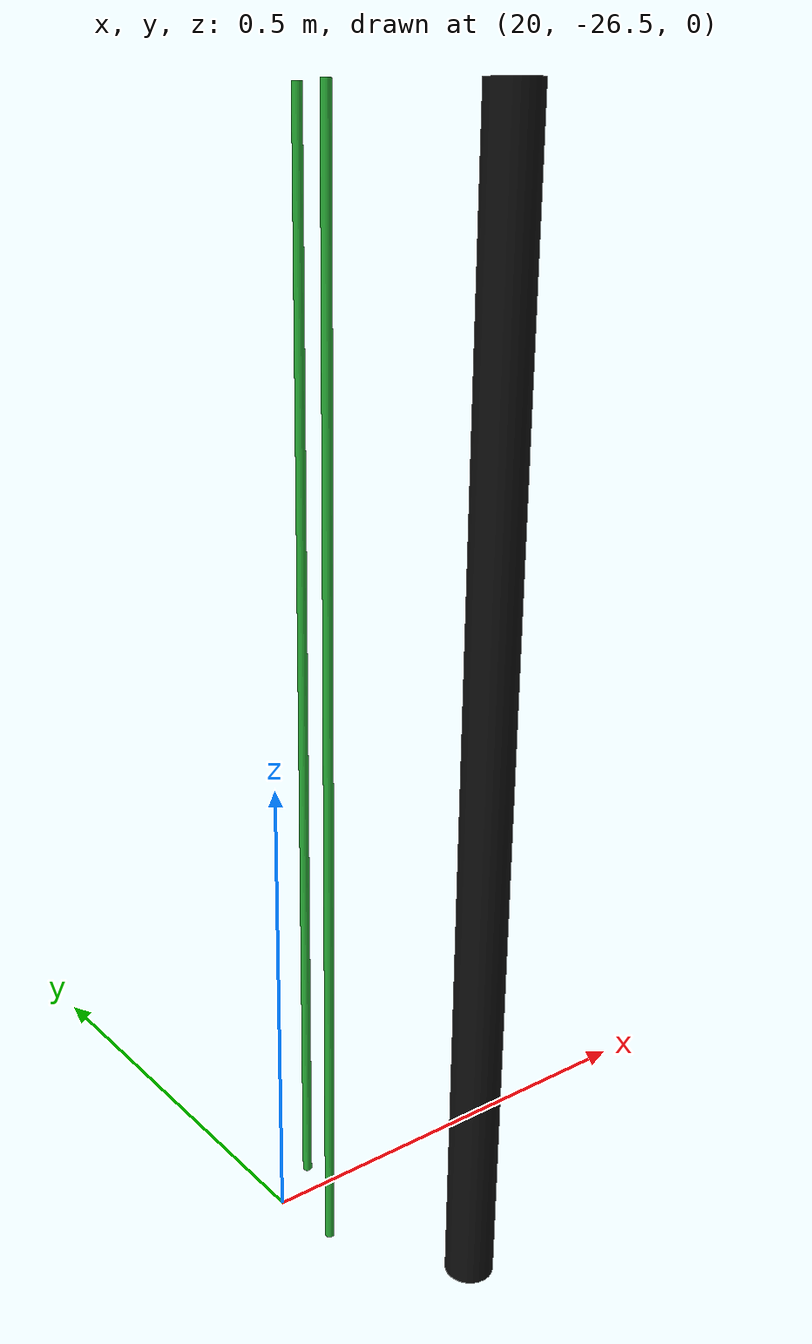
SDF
<sdf version="1.6">
 <world name="default">
  <model name="pole_23">
   <static>1</static>
   <pose>20.1 -26.7 0.575 0 -0 0</pose>
   <link name="link">
    <collision name="collision">
     <geometry><cylinder><length>1.15</length><radius>0.025</radius></cylinder></geometry>
    </collision>
    <visual name="visual">
     <geometry><cylinder><length>1.15</length><radius>0.025</radius></cylinder></geometry>
     <material>
      <script><uri>file://media/materials/scripts/gazebo.material</uri><name>Gazebo/Chrome</name></script>
      <shader type="vertex"><normal_map>__default__</normal_map></shader>
      <emissive>0.1 0.1 0.1 1</emissive>
      <specular>0.01 0.01 0.01 1</specular>
      <ambient>0.5 0.5 0.5 1</ambient>
      <diffuse>0.05 0.05 0.05 1</diffuse>
     </material>
    </visual>
   </link>
  </model>
  <model name="pole_27_clone_clone_49">
   <link name="link">
    <inertial>
     <mass>1</mass>
     <inertia><ixx>1</ixx><ixy>0</ixy><ixz>0</ixz><iyy>1</iyy><iyz>0</iyz><izz>1</izz></inertia>
    </inertial>
    <visual name="visual">
     <geometry><cylinder><length>1.15</length><radius>0.005</radius></cylinder></geometry>
     <material>
      <script><uri>file://media/materials/scripts/gazebo.material</uri><name>Gazebo/Green</name></script>
      <shader type="vertex"><normal_map>__default__</normal_map></shader>
      <emissive>0 0.1 0 1</emissive>
      <specular>0 0.01 0 1</specular>
      <ambient>0 0.5 0 1</ambient>
      <diffuse>0 0.05 0 1</diffuse>
     </material>
    </visual>
    <collision name="collision">
     <geometry><cylinder><radius>0.005</radius><length>1.15</length></cylinder></geometry>
     <surface>
      <friction>
       <ode><mu>1</mu><mu2>1</mu2><fdir1>0 0 0</fdir1><slip1>0</slip1><slip2>0</slip2></ode>
       <torsional>
        <coefficient>1</coefficient>
        <patch_radius>0</patch_radius>
        <surface_radius>0</surface_radius>
        <use_patch_radius>1</use_patch_radius>
        <ode><slip>0</slip></ode>
       </torsional>
      </friction>
      <bounce><restitution_coefficient>0</restitution_coefficient><threshold>1e+06</threshold></bounce>
      <contact>
       <collide_without_contact>0</collide_without_contact>
       <collide_without_contact_bitmask>1</collide_without_contact_bitmask>
       <collide_bitmask>1</collide_bitmask>
       <ode>
        <soft_cfm>0</soft_cfm>
        <soft_erp>0.2</soft_erp>
        <kp>1e+13</kp>
        <kd>1</kd>
        <max_vel>0.01</max_vel>
        <min_depth>0</min_depth>
       </ode>
       <bullet>
        <split_impulse>1</split_impulse>
        <split_impulse_penetration_threshold>-0.01</split_impulse_penetration_threshold>
        <soft_cfm>0</soft_cfm>
        <soft_erp>0.2</soft_erp>
        <kp>1e+13</kp>
        <kd>1</kd>
       </bullet>
      </contact>
     </surface>
    </collision>
   </link>
   <static>1</static>
   <pose>20.2017 -26.5671 0.575 0 -0 0</pose>
  </model>
  <model name="pole_27_clone_clone_50">
   <link name="link">
    <inertial>
     <mass>1</mass>
     <inertia><ixx>1</ixx><ixy>0</ixy><ixz>0</ixz><iyy>1</iyy><iyz>0</iyz><izz>1</izz></inertia>
    </inertial>
    <visual name="visual">
     <geometry><cylinder><length>1.15</length><radius>0.005</radius></cylinder></geometry>
     <material>
      <script><uri>file://media/materials/scripts/gazebo.material</uri><name>Gazebo/Green</name></script>
      <shader type="vertex"><normal_map>__default__</normal_map></shader>
      <emissive>0 0.1 0 1</emissive>
      <specular>0 0.01 0 1</specular>
      <ambient>0 0.5 0 1</ambient>
      <diffuse>0 0.05 0 1</diffuse>
     </material>
    </visual>
    <collision name="collision">
     <geometry><cylinder><radius>0.005</radius><length>1.15</length></cylinder></geometry>
     <surface>
      <friction>
       <ode><mu>1</mu><mu2>1</mu2><fdir1>0 0 0</fdir1><slip1>0</slip1><slip2>0</slip2></ode>
       <torsional>
        <coefficient>1</coefficient>
        <patch_radius>0</patch_radius>
        <surface_radius>0</surface_radius>
        <use_patch_radius>1</use_patch_radius>
        <ode><slip>0</slip></ode>
       </torsional>
      </friction>
      <bounce><restitution_coefficient>0</restitution_coefficient><threshold>1e+06</threshold></bounce>
      <contact>
       <collide_without_contact>0</collide_without_contact>
       <collide_without_contact_bitmask>1</collide_without_contact_bitmask>
       <collide_bitmask>1</collide_bitmask>
       <ode>
        <soft_cfm>0</soft_cfm>
        <soft_erp>0.2</soft_erp>
        <kp>1e+13</kp>
        <kd>1</kd>
        <max_vel>0.01</max_vel>
        <min_depth>0</min_depth>
       </ode>
       <bullet>
        <split_impulse>1</split_impulse>
        <split_impulse_penetration_threshold>-0.01</split_impulse_penetration_threshold>
        <soft_cfm>0</soft_cfm>
        <soft_erp>0.2</soft_erp>
        <kp>1e+13</kp>
        <kd>1</kd>
       </bullet>
      </contact>
     </surface>
    </collision>
   </link>
   <static>1</static>
   <pose>20.0119 -26.5731 0.575 0 -0 0</pose>
  </model>
  <model name="pole_27_clone_clone_54">
   <link name="link">
    <inertial>
     <mass>1</mass>
     <inertia><ixx>1</ixx><ixy>0</ixy><ixz>0</ixz><iyy>1</iyy><iyz>0</iyz><izz>1</izz></inertia>
    </inertial>
    <visual name="visual">
     <geometry><cylinder><length>1.15</length><radius>0.005</radius></cylinder></geometry>
     <material>
      <script><uri>file://media/materials/scripts/gazebo.material</uri><name>Gazebo/Green</name></script>
      <shader type="vertex"><normal_map>__default__</normal_map></shader>
      <emissive>0 0.1 0 1</emissive>
      <specular>0 0.01 0 1</specular>
      <ambient>0 0.5 0 1</ambient>
      <diffuse>0 0.05 0 1</diffuse>
     </material>
    </visual>
    <collision name="collision">
     <geometry><cylinder><radius>0.005</radius><length>1.15</length></cylinder></geometry>
     <surface>
      <friction>
       <ode><mu>1</mu><mu2>1</mu2><fdir1>0 0 0</fdir1><slip1>0</slip1><slip2>0</slip2></ode>
       <torsional>
        <coefficient>1</coefficient>
        <patch_radius>0</patch_radius>
        <surface_radius>0</surface_radius>
        <use_patch_radius>1</use_patch_radius>
        <ode><slip>0</slip></ode>
       </torsional>
      </friction>
      <bounce><restitution_coefficient>0</restitution_coefficient><threshold>1e+06</threshold></bounce>
      <contact>
       <collide_without_contact>0</collide_without_contact>
       <collide_without_contact_bitmask>1</collide_without_contact_bitmask>
       <collide_bitmask>1</collide_bitmask>
       <ode>
        <soft_cfm>0</soft_cfm>
        <soft_erp>0.2</soft_erp>
        <kp>1e+13</kp>
        <kd>1</kd>
        <max_vel>0.01</max_vel>
        <min_depth>0</min_depth>
       </ode>
       <bullet>
        <split_impulse>1</split_impulse>
        <split_impulse_penetration_threshold>-0.01</split_impulse_penetration_threshold>
        <soft_cfm>0</soft_cfm>
        <soft_erp>0.2</soft_erp>
        <kp>1e+13</kp>
        <kd>1</kd>
       </bullet>
      </contact>
     </surface>
    </collision>
   </link>
   <static>1</static>
   <pose>20.0573 -26.4665 0.575 0 -0 0</pose>
  </model>
 </world>
</sdf>
